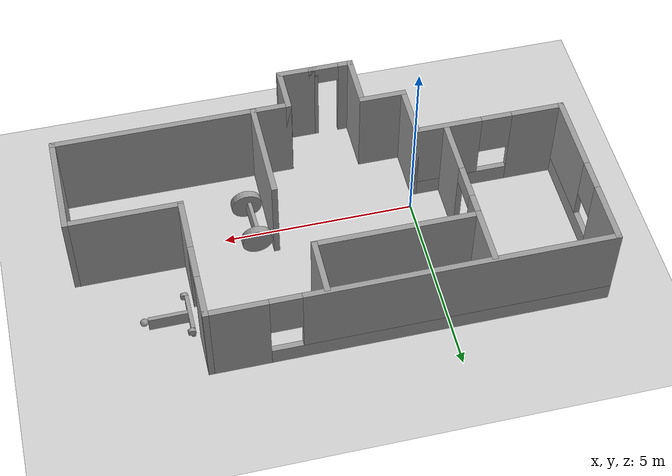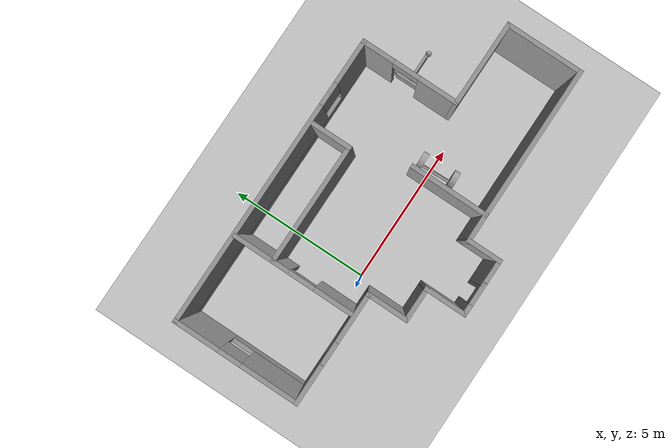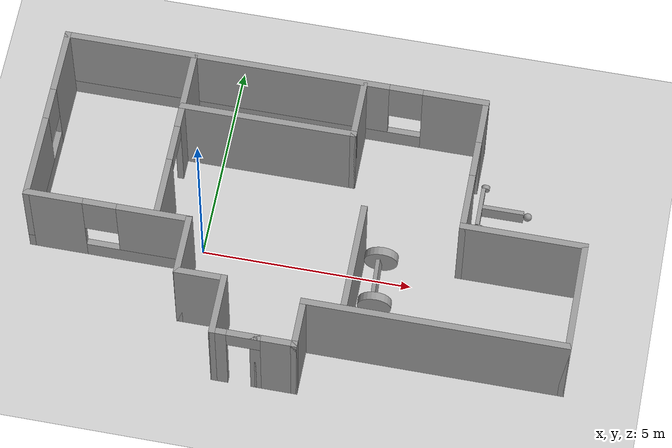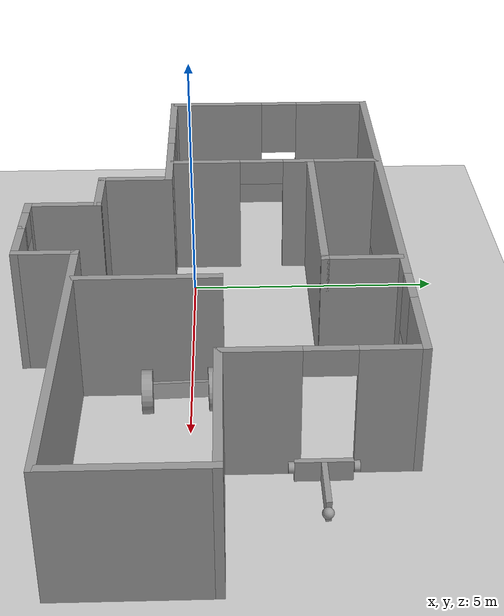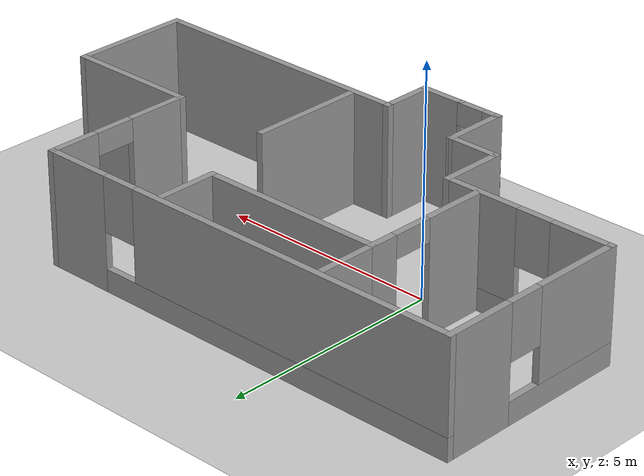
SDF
<sdf version="1.6">
 <world name="default">
  <model name="ground_plane">
   <static>1</static>
   <link name="link">
    <collision name="collision">
     <geometry><plane><normal>0 0 1</normal><size>100 100</size></plane></geometry>
     <surface>
      <contact><collide_bitmask>65535</collide_bitmask></contact>
      <friction><ode><mu>100</mu><mu2>50</mu2></ode></friction>
     </surface>
    </collision>
    <visual name="visual">
     <cast_shadows>0</cast_shadows>
     <geometry><plane><normal>0 0 1</normal><size>100 100</size></plane></geometry>
     <material>
      <script><uri>file://media/materials/scripts/gazebo.material</uri><name>Gazebo/Grey</name></script>
     </material>
    </visual>
   </link>
  </model>
  <model name="unlivable_house">
   <pose>2.44339 0.34804 0 0 -0 0</pose>
   <link name="Wall_0">
    <collision name="Wall_0_Collision">
     <geometry><box><size>6.25 0.15 2.5</size></box></geometry>
     <pose>0 0 1.25 0 -0 0</pose>
    </collision>
    <visual name="Wall_0_Visual">
     <pose>0 0 1.25 0 -0 0</pose>
     <geometry><box><size>6.25 0.15 2.5</size></box></geometry>
     <material>
      <script><uri>file://media/materials/scripts/gazebo.material</uri><name>Gazebo/Grey</name></script>
      <ambient>1 1 1 1</ambient>
     </material>
     <meta><layer>0</layer></meta>
    </visual>
    <pose>3.425 -2.425 0 0 -0 0</pose>
   </link>
   <link name="Wall_1">
    <collision name="Wall_1_Collision">
     <geometry><box><size>2.75 0.15 2.5</size></box></geometry>
     <pose>0 0 1.25 0 -0 0</pose>
    </collision>
    <visual name="Wall_1_Visual">
     <pose>0 0 1.25 0 -0 0</pose>
     <geometry><box><size>2.75 0.15 2.5</size></box></geometry>
     <material>
      <script><uri>file://media/materials/scripts/gazebo.material</uri><name>Gazebo/Grey</name></script>
      <ambient>1 1 1 1</ambient>
     </material>
     <meta><layer>0</layer></meta>
    </visual>
    <pose>6.475 -1.125 0 0 -0 1.5708</pose>
   </link>
   <link name="Wall_11">
    <collision name="Wall_11_Collision">
     <geometry><box><size>1.25 0.15 2.5</size></box></geometry>
     <pose>0 0 1.25 0 -0 0</pose>
    </collision>
    <visual name="Wall_11_Visual">
     <pose>0 0 1.25 0 -0 0</pose>
     <geometry><box><size>1.25 0.15 2.5</size></box></geometry>
     <material>
      <script><uri>file://media/materials/scripts/gazebo.material</uri><name>Gazebo/Grey</name></script>
      <ambient>1 1 1 1</ambient>
     </material>
     <meta><layer>0</layer></meta>
    </visual>
    <pose>0.375 -2.975 0 0 0 -1.5708</pose>
   </link>
   <link name="Wall_13">
    <collision name="Wall_13_Collision">
     <geometry><box><size>1 0.15 2.5</size></box></geometry>
     <pose>0 0 1.25 0 -0 0</pose>
    </collision>
    <visual name="Wall_13_Visual">
     <pose>0 0 1.25 0 -0 0</pose>
     <geometry><box><size>1 0.15 2.5</size></box></geometry>
     <material>
      <script><uri>file://media/materials/scripts/gazebo.material</uri><name>Gazebo/Grey</name></script>
      <ambient>1 1 1 1</ambient>
     </material>
     <meta><layer>0</layer></meta>
    </visual>
    <pose>-0.05 -3.525 0 0 -0 3.14159</pose>
   </link>
   <link name="Wall_15">
    <collision name="Wall_15_Collision">
     <geometry><box><size>0.25 0.15 2.5</size></box></geometry>
     <pose>0 0 1.25 0 -0 0</pose>
    </collision>
    <visual name="Wall_15_Visual">
     <pose>0 0 1.25 0 -0 0</pose>
     <geometry><box><size>0.25 0.15 2.5</size></box></geometry>
     <material>
      <script><uri>file://media/materials/scripts/gazebo.material</uri><name>Gazebo/Grey</name></script>
      <ambient>1 1 1 1</ambient>
     </material>
     <meta><layer>0</layer></meta>
    </visual>
    <pose>-0.525 -3.525 0 0 -0 3.14159</pose>
   </link>
   <link name="Wall_17">
    <pose>-3.3901 0.685491 0 0 -0 1.5708</pose>
    <visual name="Wall_17_Visual_0">
     <pose>-0.7748 0 1.25 0 -0 0</pose>
     <geometry><box><size>1.4504 0.15 2.5</size></box></geometry>
     <material>
      <script><uri>file://media/materials/scripts/gazebo.material</uri><name>Gazebo/Grey</name></script>
      <ambient>1 1 1 1</ambient>
     </material>
     <meta><layer>0</layer></meta>
    </visual>
    <collision name="Wall_17_Collision_0">
     <geometry><box><size>1.4504 0.15 2.5</size></box></geometry>
     <pose>-0.7748 0 1.25 0 -0 0</pose>
    </collision>
    <visual name="Wall_17_Visual_1">
     <pose>1.1752 0 1.25 0 -0 0</pose>
     <geometry><box><size>0.649601 0.15 2.5</size></box></geometry>
     <material>
      <script><uri>file://media/materials/scripts/gazebo.material</uri><name>Gazebo/Grey</name></script>
      <ambient>1 1 1 1</ambient>
     </material>
     <meta><layer>0</layer></meta>
    </visual>
    <collision name="Wall_17_Collision_1">
     <geometry><box><size>0.649601 0.15 2.5</size></box></geometry>
     <pose>1.1752 0 1.25 0 -0 0</pose>
    </collision>
    <visual name="Wall_17_Visual_2">
     <pose>0.400399 0 2.25 0 -0 0</pose>
     <geometry><box><size>0.9 0.15 0.5</size></box></geometry>
     <material>
      <script><uri>file://media/materials/scripts/gazebo.material</uri><name>Gazebo/Grey</name></script>
      <ambient>1 1 1 1</ambient>
     </material>
     <meta><layer>0</layer></meta>
    </visual>
    <collision name="Wall_17_Collision_2">
     <geometry><box><size>0.9 0.15 0.5</size></box></geometry>
     <pose>0.400399 0 2.25 0 -0 0</pose>
    </collision>
   </link>
   <link name="Wall_19">
    <collision name="Wall_19_Collision">
     <geometry><box><size>1.5 0.15 2.5</size></box></geometry>
     <pose>0 0 1.25 0 -0 0</pose>
    </collision>
    <visual name="Wall_19_Visual">
     <pose>0 0 1.25 0 -0 0</pose>
     <geometry><box><size>1.5 0.15 2.5</size></box></geometry>
     <material>
      <script><uri>file://media/materials/scripts/gazebo.material</uri><name>Gazebo/Grey</name></script>
      <ambient>1 1 1 1</ambient>
     </material>
     <meta><layer>0</layer></meta>
    </visual>
    <pose>-3.3901 2.78549 0 0 -0 1.5708</pose>
   </link>
   <link name="Wall_2">
    <collision name="Wall_2_Collision">
     <geometry><box><size>3 0.15 2.5</size></box></geometry>
     <pose>0 0 1.25 0 -0 0</pose>
    </collision>
    <visual name="Wall_2_Visual">
     <pose>0 0 1.25 0 -0 0</pose>
     <geometry><box><size>3 0.15 2.5</size></box></geometry>
     <material>
      <script><uri>file://media/materials/scripts/gazebo.material</uri><name>Gazebo/Grey</name></script>
      <ambient>1 1 1 1</ambient>
     </material>
     <meta><layer>0</layer></meta>
    </visual>
    <pose>5.05 0.175 0 0 -0 3.14159</pose>
   </link>
   <link name="Wall_21">
    <collision name="Wall_21_Collision">
     <geometry><box><size>4.25 0.15 2.5</size></box></geometry>
     <pose>0 0 1.25 0 -0 0</pose>
    </collision>
    <visual name="Wall_21_Visual">
     <pose>0 0 1.25 0 -0 0</pose>
     <geometry><box><size>4.25 0.15 2.5</size></box></geometry>
     <material>
      <script><uri>file://media/materials/scripts/gazebo.material</uri><name>Gazebo/Grey</name></script>
      <ambient>1 1 1 1</ambient>
     </material>
     <meta><layer>0</layer></meta>
    </visual>
    <pose>-1.3401 2.11049 0 0 -0 0</pose>
   </link>
   <link name="Wall_22">
    <collision name="Wall_22_Collision">
     <geometry><box><size>1.5 0.15 2.5</size></box></geometry>
     <pose>0 0 1.25 0 -0 0</pose>
    </collision>
    <visual name="Wall_22_Visual">
     <pose>0 0 1.25 0 -0 0</pose>
     <geometry><box><size>1.5 0.15 2.5</size></box></geometry>
     <material>
      <script><uri>file://media/materials/scripts/gazebo.material</uri><name>Gazebo/Grey</name></script>
      <ambient>1 1 1 1</ambient>
     </material>
     <meta><layer>0</layer></meta>
    </visual>
    <pose>0.709898 2.78549 0 0 -0 1.5708</pose>
   </link>
   <link name="Wall_24">
    <pose>-1 -3.525 0 0 -0 0</pose>
    <visual name="Wall_24_Visual_0">
     <pose>-0.396139 0 1.25 0 -0 0</pose>
     <geometry><box><size>0.407722 0.15 2.5</size></box></geometry>
     <material>
      <script><uri>file://media/materials/scripts/gazebo.material</uri><name>Gazebo/Grey</name></script>
      <ambient>1 1 1 1</ambient>
     </material>
     <meta><layer>0</layer></meta>
    </visual>
    <collision name="Wall_24_Collision_0">
     <geometry><box><size>0.407722 0.15 2.5</size></box></geometry>
     <pose>-0.396139 0 1.25 0 -0 0</pose>
    </collision>
    <visual name="Wall_24_Visual_1">
     <pose>0.203861 0 2.25 0 -0 0</pose>
     <geometry><box><size>0.792278 0.15 0.5</size></box></geometry>
     <material>
      <script><uri>file://media/materials/scripts/gazebo.material</uri><name>Gazebo/Grey</name></script>
      <ambient>1 1 1 1</ambient>
     </material>
     <meta><layer>0</layer></meta>
    </visual>
    <collision name="Wall_24_Collision_1">
     <geometry><box><size>0.792278 0.15 0.5</size></box></geometry>
     <pose>0.203861 0 2.25 0 -0 0</pose>
    </collision>
   </link>
   <link name="Wall_3">
    <pose>3.625 1.85 0 0 -0 1.5708</pose>
    <visual name="Wall_3_Visual_0">
     <pose>-1.03399 0 1.25 0 -0 0</pose>
     <geometry><box><size>1.43202 0.15 2.5</size></box></geometry>
     <material>
      <script><uri>file://media/materials/scripts/gazebo.material</uri><name>Gazebo/Grey</name></script>
      <ambient>1 1 1 1</ambient>
     </material>
     <meta><layer>0</layer></meta>
    </visual>
    <collision name="Wall_3_Collision_0">
     <geometry><box><size>1.43202 0.15 2.5</size></box></geometry>
     <pose>-1.03399 0 1.25 0 -0 0</pose>
    </collision>
    <visual name="Wall_3_Visual_1">
     <pose>1.16601 0 1.25 0 -0 0</pose>
     <geometry><box><size>1.16799 0.15 2.5</size></box></geometry>
     <material>
      <script><uri>file://media/materials/scripts/gazebo.material</uri><name>Gazebo/Grey</name></script>
      <ambient>1 1 1 1</ambient>
     </material>
     <meta><layer>0</layer></meta>
    </visual>
    <collision name="Wall_3_Collision_1">
     <geometry><box><size>1.16799 0.15 2.5</size></box></geometry>
     <pose>1.16601 0 1.25 0 -0 0</pose>
    </collision>
    <visual name="Wall_3_Visual_2">
     <pose>0.132015 0 2.25 0 -0 0</pose>
     <geometry><box><size>0.9 0.15 0.5</size></box></geometry>
     <material>
      <script><uri>file://media/materials/scripts/gazebo.material</uri><name>Gazebo/Grey</name></script>
      <ambient>1 1 1 1</ambient>
     </material>
     <meta><layer>0</layer></meta>
    </visual>
    <collision name="Wall_3_Collision_2">
     <geometry><box><size>0.9 0.15 0.5</size></box></geometry>
     <pose>0.132015 0 2.25 0 -0 0</pose>
    </collision>
   </link>
   <link name="Wall_34">
    <collision name="Wall_34_Collision">
     <geometry><box><size>2.75 0.15 2.5</size></box></geometry>
     <pose>0 0 1.25 0 -0 0</pose>
    </collision>
    <visual name="Wall_34_Visual">
     <pose>0 0 1.25 0 -0 0</pose>
     <geometry><box><size>2.75 0.15 2.5</size></box></geometry>
     <material>
      <script><uri>file://media/materials/scripts/gazebo.material</uri><name>Gazebo/Grey</name></script>
      <ambient>1 1 1 1</ambient>
     </material>
     <meta><layer>0</layer></meta>
    </visual>
    <pose>1.29954 -1.1092 0 0 -0 1.5708</pose>
   </link>
   <link name="Wall_4">
    <pose>-1.425 3.525 0 0 -0 3.14159</pose>
    <visual name="Wall_4_Visual_0">
     <pose>-4.33323 0 1.25 0 -0 0</pose>
     <geometry><box><size>1.58355 0.15 2.5</size></box></geometry>
     <material>
      <script><uri>file://media/materials/scripts/gazebo.material</uri><name>Gazebo/Grey</name></script>
      <ambient>1 1 1 1</ambient>
     </material>
     <meta><layer>0</layer></meta>
    </visual>
    <collision name="Wall_4_Collision_0">
     <geometry><box><size>1.58355 0.15 2.5</size></box></geometry>
     <pose>-4.33323 0 1.25 0 -0 0</pose>
    </collision>
    <visual name="Wall_4_Visual_1">
     <pose>0.791773 0 0.25 0 -0 0</pose>
     <geometry><box><size>8.66645 0.15 0.5</size></box></geometry>
     <material>
      <script><uri>file://media/materials/scripts/gazebo.material</uri><name>Gazebo/Grey</name></script>
      <ambient>1 1 1 1</ambient>
     </material>
     <meta><layer>0</layer></meta>
    </visual>
    <collision name="Wall_4_Collision_1">
     <geometry><box><size>8.66645 0.15 0.5</size></box></geometry>
     <pose>0.791773 0 0.25 0 -0 0</pose>
    </collision>
    <visual name="Wall_4_Visual_2">
     <pose>1.19177 0 1.5 0 -0 0</pose>
     <geometry><box><size>7.86645 0.15 2</size></box></geometry>
     <material>
      <script><uri>file://media/materials/scripts/gazebo.material</uri><name>Gazebo/Grey</name></script>
      <ambient>1 1 1 1</ambient>
     </material>
     <meta><layer>0</layer></meta>
    </visual>
    <collision name="Wall_4_Collision_2">
     <geometry><box><size>7.86645 0.15 2</size></box></geometry>
     <pose>1.19177 0 1.5 0 -0 0</pose>
    </collision>
    <visual name="Wall_4_Visual_3">
     <pose>-3.14145 0 1.9 0 -0 0</pose>
     <geometry><box><size>0.8 0.15 1.2</size></box></geometry>
     <material>
      <script><uri>file://media/materials/scripts/gazebo.material</uri><name>Gazebo/Grey</name></script>
      <ambient>1 1 1 1</ambient>
     </material>
     <meta><layer>0</layer></meta>
    </visual>
    <collision name="Wall_4_Collision_3">
     <geometry><box><size>0.8 0.15 1.2</size></box></geometry>
     <pose>-3.14145 0 1.9 0 -0 0</pose>
    </collision>
   </link>
   <link name="Wall_5">
    <pose>-6.475 1.35 0 0 0 -1.5708</pose>
    <visual name="Wall_5_Visual_0">
     <pose>-1.44009 0 1.25 0 -0 0</pose>
     <geometry><box><size>1.61981 0.15 2.5</size></box></geometry>
     <material>
      <script><uri>file://media/materials/scripts/gazebo.material</uri><name>Gazebo/Grey</name></script>
      <ambient>1 1 1 1</ambient>
     </material>
     <meta><layer>0</layer></meta>
    </visual>
    <collision name="Wall_5_Collision_0">
     <geometry><box><size>1.61981 0.15 2.5</size></box></geometry>
     <pose>-1.44009 0 1.25 0 -0 0</pose>
    </collision>
    <visual name="Wall_5_Visual_1">
     <pose>0.809907 0 0.25 0 -0 0</pose>
     <geometry><box><size>2.88019 0.15 0.5</size></box></geometry>
     <material>
      <script><uri>file://media/materials/scripts/gazebo.material</uri><name>Gazebo/Grey</name></script>
      <ambient>1 1 1 1</ambient>
     </material>
     <meta><layer>0</layer></meta>
    </visual>
    <collision name="Wall_5_Collision_1">
     <geometry><box><size>2.88019 0.15 0.5</size></box></geometry>
     <pose>0.809907 0 0.25 0 -0 0</pose>
    </collision>
    <visual name="Wall_5_Visual_2">
     <pose>1.20991 0 1.5 0 -0 0</pose>
     <geometry><box><size>2.08019 0.15 2</size></box></geometry>
     <material>
      <script><uri>file://media/materials/scripts/gazebo.material</uri><name>Gazebo/Grey</name></script>
      <ambient>1 1 1 1</ambient>
     </material>
     <meta><layer>0</layer></meta>
    </visual>
    <collision name="Wall_5_Collision_2">
     <geometry><box><size>2.08019 0.15 2</size></box></geometry>
     <pose>1.20991 0 1.5 0 -0 0</pose>
    </collision>
    <visual name="Wall_5_Visual_3">
     <pose>-0.230187 0 1.9 0 -0 0</pose>
     <geometry><box><size>0.8 0.15 1.2</size></box></geometry>
     <material>
      <script><uri>file://media/materials/scripts/gazebo.material</uri><name>Gazebo/Grey</name></script>
      <ambient>1 1 1 1</ambient>
     </material>
     <meta><layer>0</layer></meta>
    </visual>
    <collision name="Wall_5_Collision_3">
     <geometry><box><size>0.8 0.15 1.2</size></box></geometry>
     <pose>-0.230187 0 1.9 0 -0 0</pose>
    </collision>
   </link>
   <link name="Wall_6">
    <pose>-4.55 -0.825 0 0 -0 0</pose>
    <visual name="Wall_6_Visual_0">
     <pose>-1.29369 0 1.25 0 -0 0</pose>
     <geometry><box><size>1.41262 0.15 2.5</size></box></geometry>
     <material>
      <script><uri>file://media/materials/scripts/gazebo.material</uri><name>Gazebo/Grey</name></script>
      <ambient>1 1 1 1</ambient>
     </material>
     <meta><layer>0</layer></meta>
    </visual>
    <collision name="Wall_6_Collision_0">
     <geometry><box><size>1.41262 0.15 2.5</size></box></geometry>
     <pose>-1.29369 0 1.25 0 -0 0</pose>
    </collision>
    <visual name="Wall_6_Visual_1">
     <pose>0.70631 0 0.25 0 -0 0</pose>
     <geometry><box><size>2.58738 0.15 0.5</size></box></geometry>
     <material>
      <script><uri>file://media/materials/scripts/gazebo.material</uri><name>Gazebo/Grey</name></script>
      <ambient>1 1 1 1</ambient>
     </material>
     <meta><layer>0</layer></meta>
    </visual>
    <collision name="Wall_6_Collision_1">
     <geometry><box><size>2.58738 0.15 0.5</size></box></geometry>
     <pose>0.70631 0 0.25 0 -0 0</pose>
    </collision>
    <visual name="Wall_6_Visual_2">
     <pose>1.10631 0 1.5 0 -0 0</pose>
     <geometry><box><size>1.78738 0.15 2</size></box></geometry>
     <material>
      <script><uri>file://media/materials/scripts/gazebo.material</uri><name>Gazebo/Grey</name></script>
      <ambient>1 1 1 1</ambient>
     </material>
     <meta><layer>0</layer></meta>
    </visual>
    <collision name="Wall_6_Collision_2">
     <geometry><box><size>1.78738 0.15 2</size></box></geometry>
     <pose>1.10631 0 1.5 0 -0 0</pose>
    </collision>
    <visual name="Wall_6_Visual_3">
     <pose>-0.187379 0 1.9 0 -0 0</pose>
     <geometry><box><size>0.8 0.15 1.2</size></box></geometry>
     <material>
      <script><uri>file://media/materials/scripts/gazebo.material</uri><name>Gazebo/Grey</name></script>
      <ambient>1 1 1 1</ambient>
     </material>
     <meta><layer>0</layer></meta>
    </visual>
    <collision name="Wall_6_Collision_3">
     <geometry><box><size>0.8 0.15 1.2</size></box></geometry>
     <pose>-0.187379 0 1.9 0 -0 0</pose>
    </collision>
   </link>
   <link name="Wall_7">
    <collision name="Wall_7_Collision">
     <geometry><box><size>1.5 0.15 2.5</size></box></geometry>
     <pose>0 0 1.25 0 -0 0</pose>
    </collision>
    <visual name="Wall_7_Visual">
     <pose>0 0 1.25 0 -0 0</pose>
     <geometry><box><size>1.5 0.15 2.5</size></box></geometry>
     <material>
      <script><uri>file://media/materials/scripts/gazebo.material</uri><name>Gazebo/Grey</name></script>
      <ambient>1 1 1 1</ambient>
     </material>
     <meta><layer>0</layer></meta>
    </visual>
    <pose>-2.625 -1.5 0 0 0 -1.5708</pose>
   </link>
   <link name="Wall_8">
    <collision name="Wall_8_Collision">
     <geometry><box><size>1.25 0.15 2.5</size></box></geometry>
     <pose>0 0 1.25 0 -0 0</pose>
    </collision>
    <visual name="Wall_8_Visual">
     <pose>0 0 1.25 0 -0 0</pose>
     <geometry><box><size>1.25 0.15 2.5</size></box></geometry>
     <material>
      <script><uri>file://media/materials/scripts/gazebo.material</uri><name>Gazebo/Grey</name></script>
      <ambient>1 1 1 1</ambient>
     </material>
     <meta><layer>0</layer></meta>
    </visual>
    <pose>-2.075 -2.175 0 0 -0 0</pose>
   </link>
   <link name="Wall_9">
    <collision name="Wall_9_Collision">
     <geometry><box><size>1.5 0.15 2.5</size></box></geometry>
     <pose>0 0 1.25 0 -0 0</pose>
    </collision>
    <visual name="Wall_9_Visual">
     <pose>0 0 1.25 0 -0 0</pose>
     <geometry><box><size>1.5 0.15 2.5</size></box></geometry>
     <material>
      <script><uri>file://media/materials/scripts/gazebo.material</uri><name>Gazebo/Grey</name></script>
      <ambient>1 1 1 1</ambient>
     </material>
     <meta><layer>0</layer></meta>
    </visual>
    <pose>-1.525 -2.85 0 0 0 -1.5708</pose>
   </link>
   <static>1</static>
  </model>
  <model name="normal_follower_0">
   <link name="link">
    <inertial>
     <mass>1</mass>
     <inertia>
      <ixx>0.166667</ixx>
      <ixy>0</ixy>
      <ixz>0</ixz>
      <iyy>0.166667</iyy>
      <iyz>0</iyz>
      <izz>0.166667</izz>
     </inertia>
    </inertial>
    <visual name="visual">
     <geometry><box><size>0.1 1 0.3</size></box></geometry>
     <material>
      <script><name>Gazebo/Grey</name><uri>file://media/materials/scripts/gazebo.material</uri></script>
      <shader type="pixel"><normal_map>__default__</normal_map></shader>
      <ambient>0.3 0.3 0.3 1</ambient>
      <diffuse>0.7 0.7 0.7 1</diffuse>
      <specular>0.01 0.01 0.01 1</specular>
      <emissive>0 0 0 1</emissive>
     </material>
    </visual>
    <collision name="collision">
     <geometry><box><size>0.1 1 0.3</size></box></geometry>
     <surface>
      <friction>
       <ode><mu>1</mu><mu2>1</mu2><fdir1>0 0 0</fdir1><slip1>0</slip1><slip2>0</slip2></ode>
       <torsional>
        <coefficient>1</coefficient>
        <patch_radius>0</patch_radius>
        <surface_radius>0</surface_radius>
        <use_patch_radius>1</use_patch_radius>
        <ode><slip>0</slip></ode>
       </torsional>
      </friction>
      <bounce><restitution_coefficient>0</restitution_coefficient><threshold>1e+06</threshold></bounce>
      <contact>
       <collide_without_contact>0</collide_without_contact>
       <collide_without_contact_bitmask>1</collide_without_contact_bitmask>
       <collide_bitmask>1</collide_bitmask>
       <ode>
        <soft_cfm>0</soft_cfm>
        <soft_erp>0.2</soft_erp>
        <kp>1e+13</kp>
        <kd>1</kd>
        <max_vel>0.01</max_vel>
        <min_depth>0</min_depth>
       </ode>
       <bullet>
        <split_impulse>1</split_impulse>
        <split_impulse_penetration_threshold>-0.01</split_impulse_penetration_threshold>
        <soft_cfm>0</soft_cfm>
        <soft_erp>0.2</soft_erp>
        <kp>1e+13</kp>
        <kd>1</kd>
       </bullet>
      </contact>
     </surface>
    </collision>
   </link>
   <link name="link_0">
    <pose>0.045 0.6 0 1.5708 -0 3.14159</pose>
    <inertial>
     <mass>1</mass>
     <inertia><ixx>0.145833</ixx><ixy>0</ixy><ixz>0</ixz><iyy>0.145833</iyy><iyz>0</iyz><izz>0.125</izz></inertia>
    </inertial>
    <visual name="visual">
     <geometry><cylinder><radius>0.4</radius><length>0.2</length></cylinder></geometry>
     <material>
      <lighting>1</lighting>
      <script><uri>file://media/materials/scripts/gazebo.material</uri><name>Gazebo/Grey</name></script>
      <shader type="pixel"><normal_map>__default__</normal_map></shader>
      <ambient>0.3 0.3 0.3 1</ambient>
      <diffuse>0.7 0.7 0.7 1</diffuse>
      <specular>0.01 0.01 0.01 1</specular>
      <emissive>0 0 0 1</emissive>
     </material>
    </visual>
    <collision name="collision">
     <geometry><cylinder><radius>0.4</radius><length>0.2</length></cylinder></geometry>
     <surface>
      <friction>
       <ode><mu>1</mu><mu2>1</mu2><fdir1>0 0 0</fdir1><slip1>0</slip1><slip2>0</slip2></ode>
       <torsional>
        <coefficient>1</coefficient>
        <patch_radius>0</patch_radius>
        <surface_radius>0</surface_radius>
        <use_patch_radius>1</use_patch_radius>
        <ode><slip>0</slip></ode>
       </torsional>
      </friction>
      <bounce><restitution_coefficient>0</restitution_coefficient><threshold>1e+06</threshold></bounce>
      <contact>
       <collide_without_contact>0</collide_without_contact>
       <collide_without_contact_bitmask>1</collide_without_contact_bitmask>
       <collide_bitmask>1</collide_bitmask>
       <ode>
        <soft_cfm>0</soft_cfm>
        <soft_erp>0.2</soft_erp>
        <kp>1e+13</kp>
        <kd>1</kd>
        <max_vel>0.01</max_vel>
        <min_depth>0</min_depth>
       </ode>
       <bullet>
        <split_impulse>1</split_impulse>
        <split_impulse_penetration_threshold>-0.01</split_impulse_penetration_threshold>
        <soft_cfm>0</soft_cfm>
        <soft_erp>0.2</soft_erp>
        <kp>1e+13</kp>
        <kd>1</kd>
       </bullet>
      </contact>
     </surface>
    </collision>
   </link>
   <link name="link_0_clone">
    <pose>0.045 -0.6 -0 1.5708 -0 -3.14159</pose>
    <inertial>
     <mass>1</mass>
     <inertia><ixx>0.145833</ixx><ixy>0</ixy><ixz>0</ixz><iyy>0.145833</iyy><iyz>0</iyz><izz>0.125</izz></inertia>
    </inertial>
    <visual name="visual">
     <geometry><cylinder><radius>0.4</radius><length>0.2</length></cylinder></geometry>
     <material>
      <lighting>1</lighting>
      <script><uri>file://media/materials/scripts/gazebo.material</uri><name>Gazebo/Grey</name></script>
      <shader type="pixel"><normal_map>__default__</normal_map></shader>
      <ambient>0.3 0.3 0.3 1</ambient>
      <diffuse>0.7 0.7 0.7 1</diffuse>
      <specular>0.01 0.01 0.01 1</specular>
      <emissive>0 0 0 1</emissive>
     </material>
    </visual>
    <collision name="collision">
     <geometry><cylinder><radius>0.4</radius><length>0.2</length></cylinder></geometry>
     <surface>
      <friction>
       <ode><mu>1</mu><mu2>1</mu2><fdir1>0 0 0</fdir1><slip1>0</slip1><slip2>0</slip2></ode>
       <torsional>
        <coefficient>1</coefficient>
        <patch_radius>0</patch_radius>
        <surface_radius>0</surface_radius>
        <use_patch_radius>1</use_patch_radius>
        <ode><slip>0</slip></ode>
       </torsional>
      </friction>
      <bounce><restitution_coefficient>0</restitution_coefficient><threshold>1e+06</threshold></bounce>
      <contact>
       <collide_without_contact>0</collide_without_contact>
       <collide_without_contact_bitmask>1</collide_without_contact_bitmask>
       <collide_bitmask>1</collide_bitmask>
       <ode>
        <soft_cfm>0</soft_cfm>
        <soft_erp>0.2</soft_erp>
        <kp>1e+13</kp>
        <kd>1</kd>
        <max_vel>0.01</max_vel>
        <min_depth>0</min_depth>
       </ode>
       <bullet>
        <split_impulse>1</split_impulse>
        <split_impulse_penetration_threshold>-0.01</split_impulse_penetration_threshold>
        <soft_cfm>0</soft_cfm>
        <soft_erp>0.2</soft_erp>
        <kp>1e+13</kp>
        <kd>1</kd>
       </bullet>
      </contact>
     </surface>
    </collision>
   </link>
   <joint name="link_JOINT_0" type="revolute">
    <parent>link</parent>
    <child>link_0</child>
    <axis>
     <xyz>1 0 0</xyz>
     <use_parent_model_frame>0</use_parent_model_frame>
     <limit>
      <lower>-1.79769e+308</lower>
      <upper>1.79769e+308</upper>
      <effort>-1</effort>
      <velocity>-1</velocity>
     </limit>
     <dynamics>
      <spring_reference>0</spring_reference>
      <spring_stiffness>0</spring_stiffness>
      <damping>0</damping>
     </dynamics>
    </axis>
    <physics>
     <ode><limit><cfm>0</cfm><erp>0.2</erp></limit><suspension><cfm>0</cfm><erp>0.2</erp></suspension></ode>
    </physics>
   </joint>
   <joint name="link_JOINT_1" type="revolute">
    <parent>link</parent>
    <child>link_0_clone</child>
    <axis>
     <xyz>1 0 0</xyz>
     <use_parent_model_frame>0</use_parent_model_frame>
     <limit>
      <lower>-1.79769e+308</lower>
      <upper>1.79769e+308</upper>
      <effort>-1</effort>
      <velocity>-1</velocity>
     </limit>
     <dynamics>
      <spring_reference>0</spring_reference>
      <spring_stiffness>0</spring_stiffness>
      <damping>0</damping>
     </dynamics>
    </axis>
    <physics>
     <ode><limit><cfm>0</cfm><erp>0.2</erp></limit><suspension><cfm>0</cfm><erp>0.2</erp></suspension></ode>
    </physics>
   </joint>
   <static>0</static>
   <pose>4.2024 -0.179702 0.39222 -0 -0.173774 0.041597</pose>
  </model>
  <model name="weird_follower_0">
   <link name="link">
    <inertial>
     <mass>1</mass>
     <inertia>
      <ixx>0.166667</ixx>
      <ixy>0</ixy>
      <ixz>0</ixz>
      <iyy>0.166667</iyy>
      <iyz>0</iyz>
      <izz>0.166667</izz>
     </inertia>
    </inertial>
    <visual name="visual">
     <geometry><box><size>0.1 1 0.4</size></box></geometry>
     <material>
      <script><name>Gazebo/Grey</name><uri>file://media/materials/scripts/gazebo.material</uri></script>
      <shader type="pixel"><normal_map>__default__</normal_map></shader>
      <ambient>0.3 0.3 0.3 1</ambient>
      <diffuse>0.7 0.7 0.7 1</diffuse>
      <specular>0.01 0.01 0.01 1</specular>
      <emissive>0 0 0 1</emissive>
     </material>
    </visual>
    <collision name="collision">
     <geometry><box><size>0.1 1 0.4</size></box></geometry>
     <surface>
      <friction>
       <ode><mu>1</mu><mu2>1</mu2><fdir1>0 0 0</fdir1><slip1>0</slip1><slip2>0</slip2></ode>
       <torsional>
        <coefficient>1</coefficient>
        <patch_radius>0</patch_radius>
        <surface_radius>0</surface_radius>
        <use_patch_radius>1</use_patch_radius>
        <ode><slip>0</slip></ode>
       </torsional>
      </friction>
      <bounce><restitution_coefficient>0</restitution_coefficient><threshold>1e+06</threshold></bounce>
      <contact>
       <collide_without_contact>0</collide_without_contact>
       <collide_without_contact_bitmask>1</collide_without_contact_bitmask>
       <collide_bitmask>1</collide_bitmask>
       <ode>
        <soft_cfm>0</soft_cfm>
        <soft_erp>0.2</soft_erp>
        <kp>1e+13</kp>
        <kd>1</kd>
        <max_vel>0.01</max_vel>
        <min_depth>0</min_depth>
       </ode>
       <bullet>
        <split_impulse>1</split_impulse>
        <split_impulse_penetration_threshold>-0.01</split_impulse_penetration_threshold>
        <soft_cfm>0</soft_cfm>
        <soft_erp>0.2</soft_erp>
        <kp>1e+13</kp>
        <kd>1</kd>
       </bullet>
      </contact>
     </surface>
    </collision>
   </link>
   <link name="link_0">
    <pose>0.045 0.55001 0.099995 1.5707 -0 0</pose>
    <inertial>
     <mass>1</mass>
     <inertia><ixx>0.145833</ixx><ixy>0</ixy><ixz>0</ixz><iyy>0.145833</iyy><iyz>0</iyz><izz>0.125</izz></inertia>
    </inertial>
    <visual name="visual">
     <geometry><cylinder><radius>0.1</radius><length>0.1</length></cylinder></geometry>
     <material>
      <lighting>1</lighting>
      <script><uri>file://media/materials/scripts/gazebo.material</uri><name>Gazebo/Grey</name></script>
      <shader type="pixel"><normal_map>__default__</normal_map></shader>
      <ambient>0.3 0.3 0.3 1</ambient>
      <diffuse>0.7 0.7 0.7 1</diffuse>
      <specular>0.01 0.01 0.01 1</specular>
      <emissive>0 0 0 1</emissive>
     </material>
    </visual>
    <collision name="collision">
     <geometry><cylinder><radius>0.1</radius><length>0.1</length></cylinder></geometry>
     <surface>
      <friction>
       <ode><mu>1</mu><mu2>1</mu2><fdir1>0 0 0</fdir1><slip1>0</slip1><slip2>0</slip2></ode>
       <torsional>
        <coefficient>1</coefficient>
        <patch_radius>0</patch_radius>
        <surface_radius>0</surface_radius>
        <use_patch_radius>1</use_patch_radius>
        <ode><slip>0</slip></ode>
       </torsional>
      </friction>
      <bounce><restitution_coefficient>0</restitution_coefficient><threshold>1e+06</threshold></bounce>
      <contact>
       <collide_without_contact>0</collide_without_contact>
       <collide_without_contact_bitmask>1</collide_without_contact_bitmask>
       <collide_bitmask>1</collide_bitmask>
       <ode>
        <soft_cfm>0</soft_cfm>
        <soft_erp>0.2</soft_erp>
        <kp>1e+13</kp>
        <kd>1</kd>
        <max_vel>0.01</max_vel>
        <min_depth>0</min_depth>
       </ode>
       <bullet>
        <split_impulse>1</split_impulse>
        <split_impulse_penetration_threshold>-0.01</split_impulse_penetration_threshold>
        <soft_cfm>0</soft_cfm>
        <soft_erp>0.2</soft_erp>
        <kp>1e+13</kp>
        <kd>1</kd>
       </bullet>
      </contact>
     </surface>
    </collision>
   </link>
   <link name="link_0_clone">
    <pose>0.05 -0.55001 0.099995 1.5707 -0 0</pose>
    <inertial>
     <mass>1</mass>
     <inertia><ixx>0.145833</ixx><ixy>0</ixy><ixz>0</ixz><iyy>0.145833</iyy><iyz>0</iyz><izz>0.125</izz></inertia>
    </inertial>
    <visual name="visual">
     <geometry><cylinder><radius>0.1</radius><length>0.1</length></cylinder></geometry>
     <material>
      <lighting>1</lighting>
      <script><uri>file://media/materials/scripts/gazebo.material</uri><name>Gazebo/Grey</name></script>
      <shader type="pixel"><normal_map>__default__</normal_map></shader>
      <ambient>0.3 0.3 0.3 1</ambient>
      <diffuse>0.7 0.7 0.7 1</diffuse>
      <specular>0.01 0.01 0.01 1</specular>
      <emissive>0 0 0 1</emissive>
     </material>
    </visual>
    <collision name="collision">
     <geometry><cylinder><radius>0.1</radius><length>0.1</length></cylinder></geometry>
     <surface>
      <friction>
       <ode><mu>1</mu><mu2>1</mu2><fdir1>0 0 0</fdir1><slip1>0</slip1><slip2>0</slip2></ode>
       <torsional>
        <coefficient>1</coefficient>
        <patch_radius>0</patch_radius>
        <surface_radius>0</surface_radius>
        <use_patch_radius>1</use_patch_radius>
        <ode><slip>0</slip></ode>
       </torsional>
      </friction>
      <bounce><restitution_coefficient>0</restitution_coefficient><threshold>1e+06</threshold></bounce>
      <contact>
       <collide_without_contact>0</collide_without_contact>
       <collide_without_contact_bitmask>1</collide_without_contact_bitmask>
       <collide_bitmask>1</collide_bitmask>
       <ode>
        <soft_cfm>0</soft_cfm>
        <soft_erp>0.2</soft_erp>
        <kp>1e+13</kp>
        <kd>1</kd>
        <max_vel>0.01</max_vel>
        <min_depth>0</min_depth>
       </ode>
       <bullet>
        <split_impulse>1</split_impulse>
        <split_impulse_penetration_threshold>-0.01</split_impulse_penetration_threshold>
        <soft_cfm>0</soft_cfm>
        <soft_erp>0.2</soft_erp>
        <kp>1e+13</kp>
        <kd>1</kd>
       </bullet>
      </contact>
     </surface>
    </collision>
   </link>
   <link name="link_1">
    <pose>1.15 -0.02 0.06 0 -0 0</pose>
    <inertial>
     <mass>1</mass>
     <inertia><ixx>0.1</ixx><ixy>0</ixy><ixz>0</ixz><iyy>0.1</iyy><iyz>0</iyz><izz>0.1</izz></inertia>
    </inertial>
    <visual name="visual">
     <geometry><sphere><radius>0.1</radius></sphere></geometry>
     <material>
      <lighting>1</lighting>
      <script><uri>file://media/materials/scripts/gazebo.material</uri><name>Gazebo/Grey</name></script>
      <shader type="pixel"><normal_map>__default__</normal_map></shader>
      <ambient>0.3 0.3 0.3 1</ambient>
      <diffuse>0.7 0.7 0.7 1</diffuse>
      <specular>0.01 0.01 0.01 1</specular>
      <emissive>0 0 0 1</emissive>
     </material>
    </visual>
    <collision name="collision">
     <geometry><sphere><radius>0.1</radius></sphere></geometry>
     <surface>
      <friction>
       <ode><mu>1</mu><mu2>1</mu2><fdir1>0 0 0</fdir1><slip1>0</slip1><slip2>0</slip2></ode>
       <torsional>
        <coefficient>1</coefficient>
        <patch_radius>0</patch_radius>
        <surface_radius>0</surface_radius>
        <use_patch_radius>1</use_patch_radius>
        <ode><slip>0</slip></ode>
       </torsional>
      </friction>
      <bounce><restitution_coefficient>0</restitution_coefficient><threshold>1e+06</threshold></bounce>
      <contact>
       <collide_without_contact>0</collide_without_contact>
       <collide_without_contact_bitmask>1</collide_without_contact_bitmask>
       <collide_bitmask>1</collide_bitmask>
       <ode>
        <soft_cfm>0</soft_cfm>
        <soft_erp>0.2</soft_erp>
        <kp>1e+13</kp>
        <kd>1</kd>
        <max_vel>0.01</max_vel>
        <min_depth>0</min_depth>
       </ode>
       <bullet>
        <split_impulse>1</split_impulse>
        <split_impulse_penetration_threshold>-0.01</split_impulse_penetration_threshold>
        <soft_cfm>0</soft_cfm>
        <soft_erp>0.2</soft_erp>
        <kp>1e+13</kp>
        <kd>1</kd>
       </bullet>
      </contact>
     </surface>
    </collision>
   </link>
   <link name="link_clone">
    <pose>0.55 0 0 0 0 -1.5708</pose>
    <inertial>
     <mass>1</mass>
     <inertia>
      <ixx>0.166667</ixx>
      <ixy>0</ixy>
      <ixz>0</ixz>
      <iyy>0.166667</iyy>
      <iyz>0</iyz>
      <izz>0.166667</izz>
     </inertia>
    </inertial>
    <visual name="visual">
     <geometry><box><size>0.1 1 0.4</size></box></geometry>
     <material>
      <script><name>Gazebo/Grey</name><uri>file://media/materials/scripts/gazebo.material</uri></script>
      <shader type="pixel"><normal_map>__default__</normal_map></shader>
      <ambient>0.3 0.3 0.3 1</ambient>
      <diffuse>0.7 0.7 0.7 1</diffuse>
      <specular>0.01 0.01 0.01 1</specular>
      <emissive>0 0 0 1</emissive>
     </material>
    </visual>
    <collision name="collision">
     <geometry><box><size>0.1 1 0.4</size></box></geometry>
     <surface>
      <friction>
       <ode><mu>1</mu><mu2>1</mu2><fdir1>0 0 0</fdir1><slip1>0</slip1><slip2>0</slip2></ode>
       <torsional>
        <coefficient>1</coefficient>
        <patch_radius>0</patch_radius>
        <surface_radius>0</surface_radius>
        <use_patch_radius>1</use_patch_radius>
        <ode><slip>0</slip></ode>
       </torsional>
      </friction>
      <bounce><restitution_coefficient>0</restitution_coefficient><threshold>1e+06</threshold></bounce>
      <contact>
       <collide_without_contact>0</collide_without_contact>
       <collide_without_contact_bitmask>1</collide_without_contact_bitmask>
       <collide_bitmask>1</collide_bitmask>
       <ode>
        <soft_cfm>0</soft_cfm>
        <soft_erp>0.2</soft_erp>
        <kp>1e+13</kp>
        <kd>1</kd>
        <max_vel>0.01</max_vel>
        <min_depth>0</min_depth>
       </ode>
       <bullet>
        <split_impulse>1</split_impulse>
        <split_impulse_penetration_threshold>-0.01</split_impulse_penetration_threshold>
        <soft_cfm>0</soft_cfm>
        <soft_erp>0.2</soft_erp>
        <kp>1e+13</kp>
        <kd>1</kd>
       </bullet>
      </contact>
     </surface>
    </collision>
   </link>
   <joint name="link_1_JOINT_9" type="ball">
    <parent>link_1</parent>
    <child>link_clone</child>
    <physics>
     <ode><limit><cfm>0</cfm><erp>0.2</erp></limit><suspension><cfm>0</cfm><erp>0.2</erp></suspension></ode>
    </physics>
   </joint>
   <joint name="link_JOINT_5" type="fixed">
    <parent>link</parent>
    <child>link_clone</child>
    <physics>
     <ode><limit><cfm>0</cfm><erp>0.2</erp></limit><suspension><cfm>0</cfm><erp>0.2</erp></suspension></ode>
    </physics>
   </joint>
   <joint name="link_JOINT_6" type="revolute">
    <parent>link</parent>
    <child>link_0</child>
    <axis>
     <xyz>0 0 1</xyz>
     <use_parent_model_frame>0</use_parent_model_frame>
     <limit>
      <lower>-1.79769e+308</lower>
      <upper>1.79769e+308</upper>
      <effort>-1</effort>
      <velocity>-1</velocity>
     </limit>
     <dynamics>
      <spring_reference>0</spring_reference>
      <spring_stiffness>0</spring_stiffness>
      <damping>0</damping>
     </dynamics>
    </axis>
    <physics>
     <ode><limit><cfm>0</cfm><erp>0.2</erp></limit><suspension><cfm>0</cfm><erp>0.2</erp></suspension></ode>
    </physics>
   </joint>
   <joint name="link_JOINT_7" type="revolute">
    <parent>link</parent>
    <child>link_0_clone</child>
    <axis>
     <xyz>0 0 1</xyz>
     <use_parent_model_frame>0</use_parent_model_frame>
     <limit>
      <lower>-1.79769e+308</lower>
      <upper>1.79769e+308</upper>
      <effort>-1</effort>
      <velocity>-1</velocity>
     </limit>
     <dynamics>
      <spring_reference>0</spring_reference>
      <spring_stiffness>0</spring_stiffness>
      <damping>0</damping>
     </dynamics>
    </axis>
    <physics>
     <ode><limit><cfm>0</cfm><erp>0.2</erp></limit><suspension><cfm>0</cfm><erp>0.2</erp></suspension></ode>
    </physics>
   </joint>
   <static>0</static>
   <pose>6.29707 2.25891 0.2 0 -2e-06 0.004664</pose>
  </model>
 </world>
</sdf>
